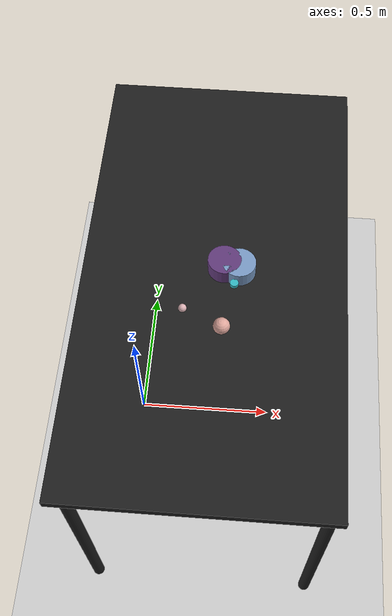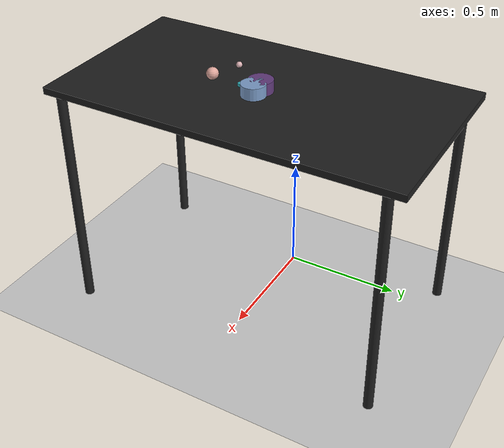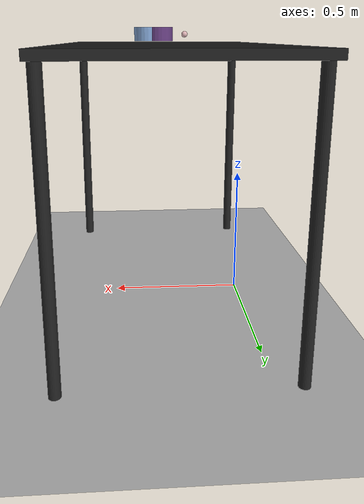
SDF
<?xml version="1.0" ?>
<sdf version="1.6">
  <world name="arm_world">
    <plugin filename="gz-sim-physics-system" name="gz::sim::systems::Physics">
      <engine>
        <filename>libgz-physics-bullet-featherstone-plugin.so</filename>
      </engine>
    </plugin>
    <plugin filename="gz-sim-user-commands-system" name="gz::sim::systems::UserCommands"/>
    <plugin filename="gz-sim-scene-broadcaster-system" name="gz::sim::systems::SceneBroadcaster"/>
    <plugin filename="gz-sim-sensors-system" name="gz::sim::systems::Sensors">
      <render_engine>ogre2</render_engine>
    </plugin>
    <gravity>0.0 0.0 -9.8</gravity>
    <scene>
      <shadows>false</shadows>
    </scene>
    <gui>
      <camera name="user_camera">
        <pose>0.75 -0.75 1.4 0 0.29 2.21</pose>
      </camera>
    </gui>
    <include>
      <uri>https://fuel.gazebosim.org/1.0/OpenRobotics/models/Sun</uri>
    </include>
    <model name="table">
      <static>true</static>
      <include>
        <uri>model://table</uri>
      </include>
      <pose>0.29 0 0 0 0 1.5708</pose>
    </model>
    <model name="ground_plane">
      <static>true</static>
      <link name="link">
        <collision name="collision">
          <geometry>
            <plane>
              <normal>0 0 1</normal>
            </plane>
          </geometry>
          <surface>
            <friction>
              <ode>
                <mu>1.0</mu>
                <mu2>1.0</mu2>
              </ode>
            </friction>
          </surface>
        </collision>
        <visual name="visual">
          <geometry>
            <plane>
              <normal>0 0 1</normal>
              <size>100 100</size>
            </plane>
          </geometry>
          <material>
            <ambient>0.8 0.8 0.8 1</ambient>
            <diffuse>0.8 0.8 0.8 1</diffuse>
            <specular>0.8 0.8 0.8 1</specular>
          </material>
        </visual>
      </link>
    </model>
    <model name="sphere_m_0">
      <pose>0.325 -0.206 1.05 0 0 1.38</pose>
      <link name="sphere_m_0_link">
        <inertial>
          <mass>0.05</mass>
          <inertia>
            <ixx>2.04e-7</ixx>
            <iyy>2.04e-7</iyy>
            <izz>3.9e-8</izz>
            <ixy>0</ixy>
            <ixz>0</ixz>
            <iyz>0</iyz>
          </inertia>
        </inertial>
        <collision name="sphere_m_0_collision">
          <geometry>
            <sphere>
              <radius>0.025</radius>
            </sphere>
          </geometry>
          <surface>
            <friction>
              <ode>
                <mu>0.8</mu>
                <mu2>0.8</mu2>
                <fdir1>0 0 1</fdir1>
                <slip1>0.001</slip1>
                <slip2>0.001</slip2>
              </ode>
              <torsional>
                <coefficient>0.1</coefficient>
                <surface_radius>0.015</surface_radius>
                <use_patch_radius>true</use_patch_radius>
              </torsional>
            </friction>
            <contact>
              <ode>
                <kp>1e5</kp>
                <kd>10</kd>
                <max_vel>0.1</max_vel>
                <min_depth>0.001</min_depth>
                <soft_cfm>0.01</soft_cfm>
                <soft_erp>0.2</soft_erp>
              </ode>
            </contact>
            <bounce>
              <restitution_coefficient>0.2</restitution_coefficient>
              <threshold>0.01</threshold>
            </bounce>
          </surface>
        </collision>
        <visual name="sphere_m_0_visual">
          <geometry>
            <sphere>
              <radius>0.025</radius>
            </sphere>
          </geometry>
          <material>
            <ambient>0.87 0.65 0.61 1</ambient>
            <diffuse>0.87 0.65 0.61 1</diffuse>
          </material>
        </visual>
        <velocity_decay>
          <linear>1</linear>
          <angular>1</angular>
        </velocity_decay>
      </link>
    </model>
    <model name="sphere_s_1">
      <pose>0.208 -0.155 1.05 0 0 1.41</pose>
      <link name="sphere_s_1_link">
        <inertial>
          <mass>0.05</mass>
          <inertia>
            <ixx>2.04e-7</ixx>
            <iyy>2.04e-7</iyy>
            <izz>3.9e-8</izz>
            <ixy>0</ixy>
            <ixz>0</ixz>
            <iyz>0</iyz>
          </inertia>
        </inertial>
        <collision name="sphere_s_1_collision">
          <geometry>
            <sphere>
              <radius>0.0125</radius>
            </sphere>
          </geometry>
          <surface>
            <friction>
              <ode>
                <mu>0.8</mu>
                <mu2>0.8</mu2>
                <fdir1>0 0 1</fdir1>
                <slip1>0.001</slip1>
                <slip2>0.001</slip2>
              </ode>
              <torsional>
                <coefficient>0.1</coefficient>
                <surface_radius>0.015</surface_radius>
                <use_patch_radius>true</use_patch_radius>
              </torsional>
            </friction>
            <contact>
              <ode>
                <kp>1e5</kp>
                <kd>10</kd>
                <max_vel>0.1</max_vel>
                <min_depth>0.001</min_depth>
                <soft_cfm>0.01</soft_cfm>
                <soft_erp>0.2</soft_erp>
              </ode>
            </contact>
            <bounce>
              <restitution_coefficient>0.2</restitution_coefficient>
              <threshold>0.01</threshold>
            </bounce>
          </surface>
        </collision>
        <visual name="sphere_s_1_visual">
          <geometry>
            <sphere>
              <radius>0.0125</radius>
            </sphere>
          </geometry>
          <material>
            <ambient>0.86 0.7 0.71 1</ambient>
            <diffuse>0.86 0.7 0.71 1</diffuse>
          </material>
        </visual>
        <velocity_decay>
          <linear>1</linear>
          <angular>1</angular>
        </velocity_decay>
      </link>
    </model>
    <model name="cylinder_s_2">
      <pose>0.352 -0.061 1.05 0 0 2.03</pose>
      <link name="cylinder_s_2_link">
        <inertial>
          <mass>0.05</mass>
          <inertia>
            <ixx>2.04e-7</ixx>
            <iyy>2.04e-7</iyy>
            <izz>3.9e-8</izz>
            <ixy>0</ixy>
            <ixz>0</ixz>
            <iyz>0</iyz>
          </inertia>
        </inertial>
        <collision name="cylinder_s_2_collision">
          <geometry>
            <cylinder>
              <radius>0.0125</radius>
              <length>0.0125</length>
            </cylinder>
          </geometry>
          <surface>
            <friction>
              <ode>
                <mu>0.8</mu>
                <mu2>0.8</mu2>
                <fdir1>0 0 1</fdir1>
                <slip1>0.001</slip1>
                <slip2>0.001</slip2>
              </ode>
              <torsional>
                <coefficient>0.1</coefficient>
                <surface_radius>0.015</surface_radius>
                <use_patch_radius>true</use_patch_radius>
              </torsional>
            </friction>
            <contact>
              <ode>
                <kp>1e5</kp>
                <kd>10</kd>
                <max_vel>0.1</max_vel>
                <min_depth>0.001</min_depth>
                <soft_cfm>0.01</soft_cfm>
                <soft_erp>0.2</soft_erp>
              </ode>
            </contact>
            <bounce>
              <restitution_coefficient>0.2</restitution_coefficient>
              <threshold>0.01</threshold>
            </bounce>
          </surface>
        </collision>
        <visual name="cylinder_s_2_visual">
          <geometry>
            <cylinder>
              <radius>0.0125</radius>
              <length>0.0125</length>
            </cylinder>
          </geometry>
          <material>
            <ambient>0.2 0.73 0.77 1</ambient>
            <diffuse>0.2 0.73 0.77 1</diffuse>
          </material>
        </visual>
        <velocity_decay>
          <linear>1</linear>
          <angular>1</angular>
        </velocity_decay>
      </link>
    </model>
    <model name="cylinder_l_3">
      <pose>0.363 -0.001 1.05 0 0 1.34</pose>
      <link name="cylinder_l_3_link">
        <inertial>
          <mass>0.05</mass>
          <inertia>
            <ixx>2.04e-7</ixx>
            <iyy>2.04e-7</iyy>
            <izz>3.9e-8</izz>
            <ixy>0</ixy>
            <ixz>0</ixz>
            <iyz>0</iyz>
          </inertia>
        </inertial>
        <collision name="cylinder_l_3_collision">
          <geometry>
            <cylinder>
              <radius>0.05</radius>
              <length>0.05</length>
            </cylinder>
          </geometry>
          <surface>
            <friction>
              <ode>
                <mu>0.8</mu>
                <mu2>0.8</mu2>
                <fdir1>0 0 1</fdir1>
                <slip1>0.001</slip1>
                <slip2>0.001</slip2>
              </ode>
              <torsional>
                <coefficient>0.1</coefficient>
                <surface_radius>0.015</surface_radius>
                <use_patch_radius>true</use_patch_radius>
              </torsional>
            </friction>
            <contact>
              <ode>
                <kp>1e5</kp>
                <kd>10</kd>
                <max_vel>0.1</max_vel>
                <min_depth>0.001</min_depth>
                <soft_cfm>0.01</soft_cfm>
                <soft_erp>0.2</soft_erp>
              </ode>
            </contact>
            <bounce>
              <restitution_coefficient>0.2</restitution_coefficient>
              <threshold>0.01</threshold>
            </bounce>
          </surface>
        </collision>
        <visual name="cylinder_l_3_visual">
          <geometry>
            <cylinder>
              <radius>0.05</radius>
              <length>0.05</length>
            </cylinder>
          </geometry>
          <material>
            <ambient>0.48 0.61 0.78 1</ambient>
            <diffuse>0.48 0.61 0.78 1</diffuse>
          </material>
        </visual>
        <velocity_decay>
          <linear>1</linear>
          <angular>1</angular>
        </velocity_decay>
      </link>
    </model>
    <model name="cylinder_l_4">
      <pose>0.319 0.006 1.05 0 0 4.09</pose>
      <link name="cylinder_l_4_link">
        <inertial>
          <mass>0.05</mass>
          <inertia>
            <ixx>2.04e-7</ixx>
            <iyy>2.04e-7</iyy>
            <izz>3.9e-8</izz>
            <ixy>0</ixy>
            <ixz>0</ixz>
            <iyz>0</iyz>
          </inertia>
        </inertial>
        <collision name="cylinder_l_4_collision">
          <geometry>
            <cylinder>
              <radius>0.05</radius>
              <length>0.05</length>
            </cylinder>
          </geometry>
          <surface>
            <friction>
              <ode>
                <mu>0.8</mu>
                <mu2>0.8</mu2>
                <fdir1>0 0 1</fdir1>
                <slip1>0.001</slip1>
                <slip2>0.001</slip2>
              </ode>
              <torsional>
                <coefficient>0.1</coefficient>
                <surface_radius>0.015</surface_radius>
                <use_patch_radius>true</use_patch_radius>
              </torsional>
            </friction>
            <contact>
              <ode>
                <kp>1e5</kp>
                <kd>10</kd>
                <max_vel>0.1</max_vel>
                <min_depth>0.001</min_depth>
                <soft_cfm>0.01</soft_cfm>
                <soft_erp>0.2</soft_erp>
              </ode>
            </contact>
            <bounce>
              <restitution_coefficient>0.2</restitution_coefficient>
              <threshold>0.01</threshold>
            </bounce>
          </surface>
        </collision>
        <visual name="cylinder_l_4_visual">
          <geometry>
            <cylinder>
              <radius>0.05</radius>
              <length>0.05</length>
            </cylinder>
          </geometry>
          <material>
            <ambient>0.38 0.23 0.48 1</ambient>
            <diffuse>0.38 0.23 0.48 1</diffuse>
          </material>
        </visual>
        <velocity_decay>
          <linear>1</linear>
          <angular>1</angular>
        </velocity_decay>
      </link>
    </model>
  </world>
</sdf>

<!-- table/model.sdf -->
<sdf version="1.5">
  <model name="table">
    <static>true</static>
    <link name="link">
      <collision name="surface">
        <pose>0 0 1.0 0 0 0</pose>
        <geometry>
          <box>
            <size>1.5 0.8 0.03</size>
          </box>
        </geometry>
        <surface>
          <friction>
            <ode>
              <mu>0.6</mu>
              <mu2>0.6</mu2>
            </ode>
          </friction>
        </surface>
      </collision>
      <visual name="surface">
        <pose>0 0 1.0 0 0 0</pose>
        <geometry>
          <box>
            <size>1.5 0.8 0.03</size>
          </box>
        </geometry>
        <material>
          <script>
            <uri>file://media/materials/scripts/gazebo.material</uri>
            <name>Gazebo/Black</name>
          </script>
        </material>
      </visual>
      <collision name="front_left_leg">
        <pose>0.68 0.38 0.5 0 0 0</pose>
        <geometry>
          <cylinder>
            <radius>0.02</radius>
            <length>1.0</length>
          </cylinder>
        </geometry>
      </collision>
      <visual name="front_left_leg">
        <pose>0.68 0.38 0.5 0 0 0</pose>
        <geometry>
          <cylinder>
            <radius>0.02</radius>
            <length>1.0</length>
          </cylinder>
        </geometry>
        <material>
          <script>
            <uri>file://media/materials/scripts/gazebo.material</uri>
            <name>Gazebo/Black</name>
          </script>
        </material>
      </visual>
      <collision name="front_right_leg">
        <pose>0.68 -0.38 0.5 0 0 0</pose>
        <geometry>
          <cylinder>
            <radius>0.02</radius>
            <length>1.0</length>
          </cylinder>
        </geometry>
      </collision>
      <visual name="front_right_leg">
        <pose>0.68 -0.38 0.5 0 0 0</pose>
        <geometry>
          <cylinder>
            <radius>0.02</radius>
            <length>1.0</length>
          </cylinder>
        </geometry>
        <material>
          <script>
            <uri>file://media/materials/scripts/gazebo.material</uri>
            <name>Gazebo/Black</name>
          </script>
        </material>
      </visual>
      <collision name="back_right_leg">
        <pose>-0.68 -0.38 0.5 0 0 0</pose>
        <geometry>
          <cylinder>
            <radius>0.02</radius>
            <length>1.0</length>
          </cylinder>
        </geometry>
      </collision>
      <visual name="back_right_leg">
        <pose>-0.68 -0.38 0.5 0 0 0</pose>
        <geometry>
          <cylinder>
            <radius>0.02</radius>
            <length>1.0</length>
          </cylinder>
        </geometry>
        <material>
          <script>
            <uri>file://media/materials/scripts/gazebo.material</uri>
            <name>Gazebo/Black</name>
          </script>
        </material>
      </visual>
      <collision name="back_left_leg">
        <pose>-0.68 0.38 0.5 0 0 0</pose>
        <geometry>
          <cylinder>
            <radius>0.02</radius>
            <length>1.0</length>
          </cylinder>
        </geometry>
      </collision>
      <visual name="back_left_leg">
        <pose>-0.68 0.38 0.5 0 0 0</pose>
        <geometry>
          <cylinder>
            <radius>0.02</radius>
            <length>1.0</length>
          </cylinder>
        </geometry>
        <material>
          <script>
            <uri>file://media/materials/scripts/gazebo.material</uri>
            <name>Gazebo/Black</name>
          </script>
        </material>
      </visual>
    </link>
  </model>
</sdf>
